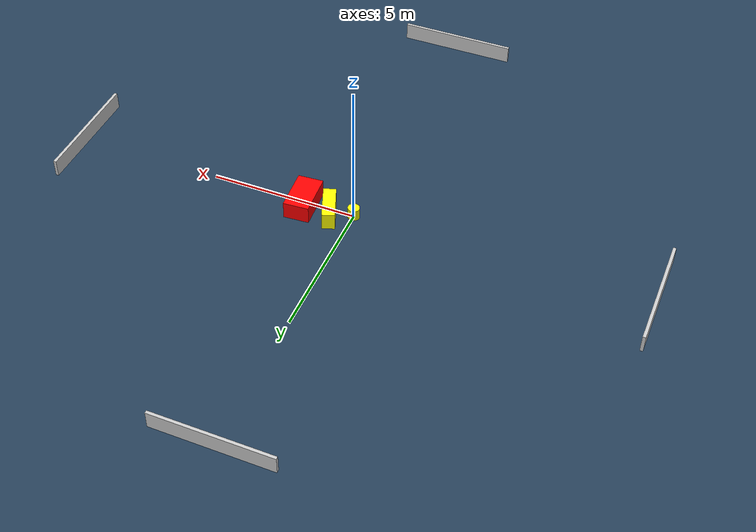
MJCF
<?xml version="1.0" ?>
<mujoco model="generated_environment">
  <option timestep="0.01" integrator="RK4" cone="elliptic"/>
  <default>
    <geom density="1"/>
  </default>
  <asset>
    <texture builtin="gradient" height="3072" name="skybox" rgb1="0.3 0.5 0.7" rgb2="0 0 0" type="skybox" width="512"/>
    <texture builtin="checker" height="300" name="groundplane" rgb1="0.2 0.3 0.4" rgb2="0.1 0.2 0.3" type="2d" width="300"/>
    <material name="groundplane" reflectance="0.2" texrepeat="5 5" texture="groundplane"/>
  </asset>
  <worldbody>
    <light dir="0 0 -1" directional="true" pos="0 0 1.5"/>
    <geom condim="3" friction="0.5 0.005 0.001" material="groundplane" name="floor" pos="0 0 0" size="0 0 0.05" type="plane"/>
    <body name="walls">
      <geom name="wall_1" condim="4" pos="-10.0 0.0 0.3" rgba="0.800000011920929 0.800000011920929 0.800000011920929 1.0" size="0.05 2.0 0.3" type="box"/>
      <geom name="wall_2" condim="4" pos="10.0 0.0 0.3" rgba="0.800000011920929 0.800000011920929 0.800000011920929 1.0" size="0.05 2.0 0.3" type="box"/>
      <geom name="wall_3" condim="4" pos="0.0 -10.0 0.3" rgba="0.800000011920929 0.800000011920929 0.800000011920929 1.0" size="2.0 0.05 0.3" type="box"/>
      <geom name="wall_4" condim="4" pos="0.0 10.0 0.3" rgba="0.800000011920929 0.800000011920929 0.800000011920929 1.0" size="2.0 0.05 0.3" type="box"/>
    </body>
    <body name="robot">
      <joint name="joint_x" type="slide" pos="0 0 0" axis="1 0 0"/>
      <joint name="joint_y" type="slide" pos="0 0 0" axis="0 1 0"/>
      <geom name="robot" type="cylinder" pos="0.0 0.0 0.2" size="0.2 0.2 0.0" mass="5.0" friction="1.0 0.005 0.0001" condim="4" rgba="1.0 1.0 0.0 1.0"/>
    </body>
    <body name="obstacle_1_movable">
      <geom name="obstacle_1_movable" condim="4" pos="0.7632892302430485 0.2506350657811436 0.3" euler="0 0 201.08732717754708" friction="0.0 0.005 0.001" rgba="1.0 1.0 0.0 1.0" size="0.21441726774406566 0.6319680954806564 0.3" type="box" mass="0.1"/>
      <joint type="free"/>
    </body>
    <body name="obstacle_2_static">
      <geom name="obstacle_2_static" condim="4" pos="1.7213256028914108 0.1435931697970238 0.3" euler="0 0 3.9662767609397287" friction="0.0 0.005 0.001" rgba="1.0 0.0 0.0 1.0" size="0.43007391642652504 0.7179910198094523 0.3" type="box"/>
    </body>
  </worldbody>
  <actuator>
    <motor name="actuator_x" joint="joint_x" gear="1" ctrlrange="-1 1"/>
    <motor name="actuator_y" joint="joint_y" gear="1" ctrlrange="-1 1"/>
  </actuator>
</mujoco>
